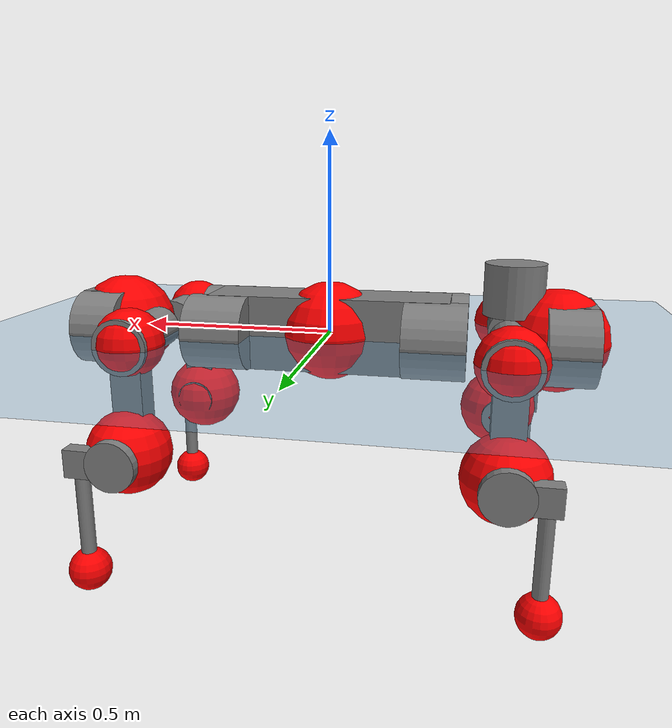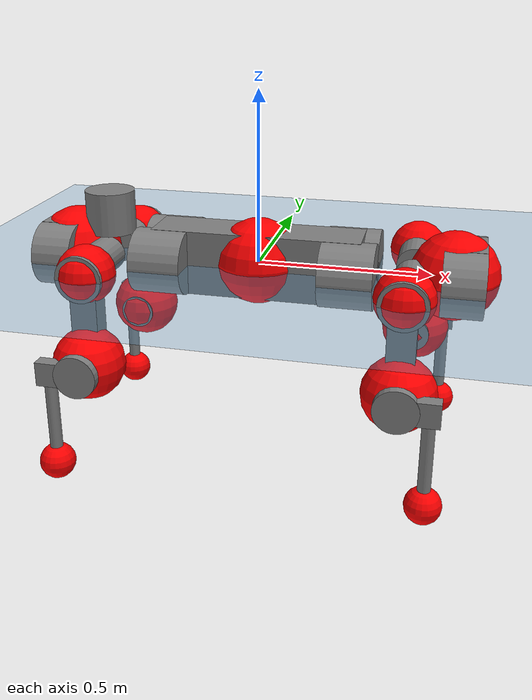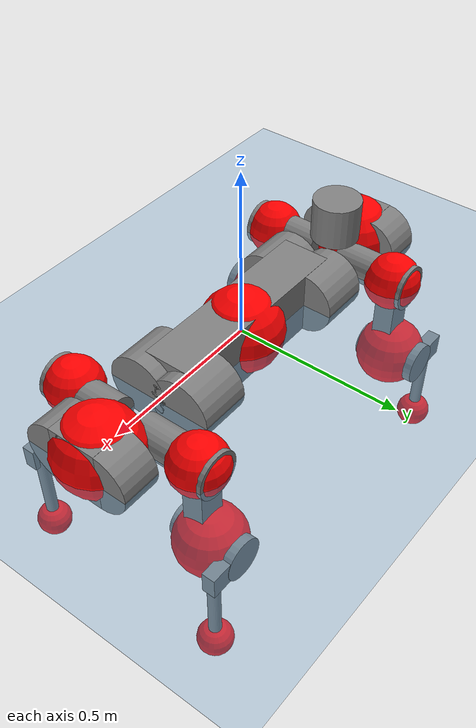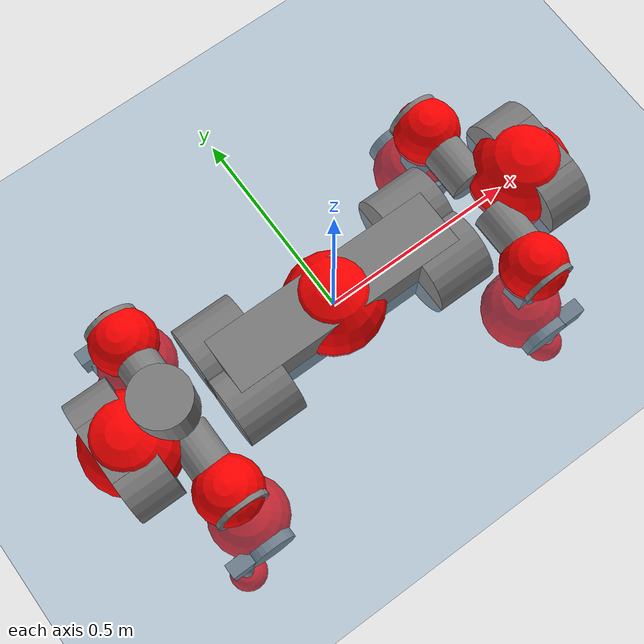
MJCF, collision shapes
<mujoco model="anymal_c">
  <compiler angle="radian" assetdir="assets" balanceinertia="true" inertiafromgeom="false"/>

  <option timestep="0.005" density="1.2" viscosity="2e-05"/>

  <size nkey="1"/>

  <visual>
    <quality shadowsize="8192"/>
    <map shadowclip="0.5"/>
  </visual>

  <default>
    <default class="/">
      <material specular="0" shininess="0.25"/>
      <geom contype="0" conaffinity="0" group="1" solref="-1000 -80"/>
      <site size="0.01 0.005 0.005" group="5"/>
      <general forcelimited="true" forcerange="-80 80" biastype="affine" gainprm="80" biasprm="0 -80 -2"/>
      <default class="anymal_c">
        <joint armature="0.01" damping="0.01" frictionloss="0.1"/>
        <default class="visual">
          <geom type="mesh" group="2"/>
          <default class="visual_zflip"/>
        </default>
        <default class="collision">
          <geom type="cylinder" group="3"/>
          <default class="foot">
            <geom size="0.03 0 0" type="sphere" condim="6" priority="1" friction="0.8 0.02 0.01" solimp="0.015 1 0.03"/>
          </default>
        </default>
      </default>
      <default class="reward_collision_sphere">
        <geom group="5" rgba="1 0 0 1"/>
      </default>
    </default>
  </default>

  <asset>
    <texture type="skybox" colorspace="auto" name="//unnamed_texture_0" builtin="gradient" rgb1="0.95 0.95 0.95" rgb2="0.95 0.95 0.95" width="100" height="600"/>
    <texture type="2d" colorspace="auto" name="texplane" builtin="checker" rgb1="0.345 0.575 0.748" rgb2="0.345 0.575 0.748" markrgb="1 1 1" width="512" height="512"/>
    <texture type="2d" colorspace="linear" name="base" file="base.png"/>
    <texture type="2d" colorspace="linear" name="top_shell" file="top_shell.png"/>
    <texture type="2d" colorspace="linear" name="bottom_shell" file="bottom_shell.png"/>
    <texture type="2d" colorspace="linear" name="remote" file="remote.png"/>
    <texture type="2d" colorspace="linear" name="hatch" file="hatch.png"/>
    <texture type="2d" colorspace="linear" name="handle" file="handle.png"/>
    <texture type="2d" colorspace="linear" name="face" file="face.png"/>
    <texture type="2d" colorspace="linear" name="battery" file="battery.png"/>
    <texture type="2d" colorspace="linear" name="lidar_cage" file="lidar_cage.png"/>
    <texture type="2d" colorspace="linear" name="depth_camera" file="depth_camera.png"/>
    <texture type="2d" colorspace="linear" name="wide_angle_camera" file="wide_angle_camera.png"/>
    <texture type="2d" colorspace="linear" name="lidar" file="lidar.png"/>
    <texture type="2d" colorspace="linear" name="drive" file="drive.png"/>
    <texture type="2d" colorspace="linear" name="hip_l" file="hip_l.png"/>
    <texture type="2d" colorspace="linear" name="shank_l" file="shank_l.png"/>
    <texture type="2d" colorspace="linear" name="foot" file="foot.png"/>
    <texture type="2d" colorspace="linear" name="thigh" file="thigh.png"/>
    <texture type="2d" colorspace="linear" name="shank_r" file="shank_r.png"/>
    <texture type="2d" colorspace="linear" name="hip_r" file="hip_r.png"/>
    <material name="MatPlane" class="/" texture="texplane" texuniform="true" texrepeat="2 2" specular="0.9" shininess="0.5"/>
    <material name="black_plastic" class="/" rgba="0.007 0.007 0.007 1"/>
    <material name="green" class="/" rgba="0.052 0.178 0.033 1"/>
    <material name="red" class="/" rgba="0.178 0.006 0.005 1"/>
    <material name="yellow" class="/" rgba="0.178 0.119 0.006 1"/>
    <material name="lwl" class="/" rgba="0.8 0.8 0.8 1"/>
    <material name="base" class="/" texture="base"/>
    <material name="top_shell" class="/" texture="top_shell"/>
    <material name="bottom_shell" class="/" texture="bottom_shell"/>
    <material name="hip_l" class="/" texture="hip_l"/>
    <material name="thigh" class="/" texture="thigh"/>
    <material name="shank_l" class="/" texture="shank_l"/>
    <material name="foot" class="/" texture="foot"/>
    <material name="hip_r" class="/" texture="hip_r"/>
    <material name="shank" class="/" texture="shank_r"/>
    <material name="hatch" class="/" texture="hatch"/>
    <material name="remote" class="/" texture="remote"/>
    <material name="handle" class="/" texture="handle"/>
    <material name="face" class="/" texture="face"/>
    <material name="depth_camera" class="/" texture="depth_camera"/>
    <material name="wide_angle_camera" class="/" texture="wide_angle_camera"/>
    <material name="battery" class="/" texture="battery"/>
    <material name="lidar_cage" class="/" texture="lidar_cage"/>
    <material name="lidar" class="/" texture="lidar"/>
    <material name="drive" class="/" texture="drive"/>
    <mesh name="base_0" class="/" file="base_0.obj"/>
    <mesh name="base_1" class="/" file="base_1.obj"/>
    <mesh name="base_2" class="/" file="base_2.obj"/>
    <mesh name="base_3" class="/" file="base_3.obj"/>
    <mesh name="base_4" class="/" file="base_4.obj"/>
    <mesh name="base_5" class="/" file="base_5.obj"/>
    <mesh name="top_shell" class="/" file="top_shell.obj"/>
    <mesh name="bottom_shell" class="/" file="bottom_shell.obj"/>
    <mesh name="remote" class="/" file="remote.obj"/>
    <mesh name="handle" class="/" file="handle.obj"/>
    <mesh name="face" class="/" file="face.obj"/>
    <mesh name="wide_angle_camera" class="/" file="wide_angle_camera.obj"/>
    <mesh name="depth_camera" class="/" file="depth_camera.obj"/>
    <mesh name="battery" class="/" file="battery.obj"/>
    <mesh name="lidar_cage" class="/" file="lidar_cage.obj"/>
    <mesh name="lidar" class="/" file="lidar.obj"/>
    <mesh name="drive" class="/" file="drive.obj"/>
    <mesh name="hip_l" class="/" file="hip_l.obj"/>
    <mesh name="thigh" class="/" file="thigh.obj"/>
    <mesh name="shank_l" class="/" file="shank_l.obj"/>
    <mesh name="foot" class="/" file="foot.obj"/>
    <mesh name="hip_r" class="/" file="hip_r.obj"/>
    <mesh name="hatch" class="/" file="hatch.obj"/>
    <mesh name="shank_r" class="/" file="shank_r.obj"/>
  </asset>

  <worldbody>
    <geom name="floor" class="/" size="100 100 0.125" type="plane" group="0" material="MatPlane"/>
    <light name="toplight_shadow" class="/" pos="0 0 5" dir="0.0990148 0.0990148 -0.990148" type="directional" ambient="0.04 0.04 0.04" diffuse="0.55 0.55 0.55" specular="0.12 0.12 0.12"/>
    <light name="toplight_fill" class="/" pos="0 0 5" dir="0.0990148 0.0990148 -0.990148" type="directional" castshadow="false" ambient="0.04 0.04 0.04" diffuse="0.3 0.3 0.3" specular="0.08 0.08 0.08"/>
    <body name="trunk" childclass="anymal_c" pos="-0.000511329 0.000154841 0.00526729" quat="1 -0.000805857 0.000244243 0.000333551">
      <inertial pos="0.00483921 -0.00901209 0.039776" quat="0.499442 0.498459 0.500537 0.501556" mass="23.1311" diaginertia="1.82212 0.607964 0.142239"/>
      <joint name="//unnamed_joint_0" type="free" armature="0" damping="0" frictionloss="0"/>
      <geom name="//unnamed_geom_1" class="visual" material="green" mesh="base_0"/>
      <geom name="//unnamed_geom_2" class="visual" material="yellow" mesh="base_1"/>
      <geom name="//unnamed_geom_3" class="visual" material="red" mesh="base_2"/>
      <geom name="//unnamed_geom_4" class="visual" material="black_plastic" mesh="base_3"/>
      <geom name="//unnamed_geom_5" class="visual" material="lwl" mesh="base_4"/>
      <geom name="//unnamed_geom_6" class="visual" material="base" mesh="base_5"/>
      <geom name="trunk_1" class="collision" size="0.304632 0.0735318 0.0945409" type="box"/>
      <geom name="trunk_2" class="collision" size="0.0945409 0.076158" pos="0.271853 0.0688894 0" quat="0.707107 0 0.707107 0"/>
      <geom name="trunk_3" class="collision" size="0.0945409 0.076158" pos="-0.271853 0.0688894 0" quat="0.707107 0 0.707107 0"/>
      <geom name="trunk_4" class="collision" size="0.0945409 0.076158" pos="0.271853 -0.0688894 0" quat="0.707107 0 0.707107 0"/>
      <geom name="trunk_5" class="collision" size="0.0945409 0.076158" pos="-0.271853 -0.0688894 0" quat="0.707107 0 0.707107 0"/>
      <geom name="//unnamed_geom_12" class="visual" material="top_shell" mesh="top_shell"/>
      <geom name="//unnamed_geom_13" class="visual" material="bottom_shell" mesh="bottom_shell"/>
      <geom name="//unnamed_geom_14" class="visual" material="remote" mesh="remote"/>
      <geom name="//unnamed_geom_15" class="visual" material="handle" mesh="handle"/>
      <geom name="//unnamed_geom_16" class="visual" pos="0.518083 0 0" quat="1 0 0 0" material="face" mesh="face"/>
      <geom name="trunk_6" class="collision" size="0.057775 0.0735318 0.0945409" pos="0.586827 0 0" type="box"/>
      <geom name="//unnamed_geom_18" class="collision" size="0.0945409 0.057775" pos="0.586827 0.0688894 0" quat="0.707107 0 0.707107 0"/>
      <geom name="//unnamed_geom_19" class="collision" size="0.0945409 0.057775" pos="0.586827 -0.0688894 0" quat="0.707107 0 0.707107 0"/>
      <geom name="//unnamed_geom_20" class="visual" pos="0.577001 0 -0.0242586" quat="0.965926 0 0.258819 0" material="depth_camera" mesh="depth_camera"/>
      <geom name="//unnamed_geom_21" class="visual" pos="0.641198 0 0.0137325" material="wide_angle_camera" mesh="wide_angle_camera"/>
      <geom name="//unnamed_geom_22" class="visual_zflip" pos="-0.518083 0 0" quat="0 0 0 1" material="face" mesh="face"/>
      <geom name="trunk_7" class="collision" size="0.057775 0.0735318 0.0945409" pos="-0.586827 0 0" quat="0 0 0 1" type="box"/>
      <geom name="//unnamed_geom_24" class="collision" size="0.0945409 0.057775" pos="-0.586827 -0.0688894 0" quat="0 -0.707107 0 0.707107"/>
      <geom name="//unnamed_geom_25" class="collision" size="0.0945409 0.057775" pos="-0.586827 0.0688894 0" quat="0 -0.707107 0 0.707107"/>
      <geom name="//unnamed_geom_26" class="visual" pos="-0.577001 0 -0.0242586" quat="0 -0.258819 0 0.965926" material="depth_camera" mesh="depth_camera"/>
      <geom name="//unnamed_geom_27" class="visual_zflip" pos="-0.641198 0 0.0137325" quat="0 0 0 1" material="wide_angle_camera" mesh="wide_angle_camera"/>
      <geom name="//unnamed_geom_28" class="visual" material="battery" mesh="battery"/>
      <geom name="//unnamed_geom_29" class="visual" pos="0 0.0717458 0.029176" quat="0.683013 -0.183013 0.183013 0.683013" material="depth_camera" mesh="depth_camera"/>
      <geom name="//unnamed_geom_30" class="visual" pos="0 -0.0717458 0.029176" quat="0.683013 0.183013 0.183013 -0.683013" material="depth_camera" mesh="depth_camera"/>
      <geom name="//unnamed_geom_31" class="visual" pos="-0.454963 0 0.0674239" quat="1 0 0 0" material="lidar_cage" mesh="lidar_cage"/>
      <geom name="trunk_8" class="collision" size="0.0735318 0.0630273" pos="-0.454963 0 0.122464"/>
      <geom name="//unnamed_geom_33" class="visual" pos="-0.454963 -0.000104411 0.130445" quat="0.707107 0 0 -0.707107" material="lidar" mesh="lidar"/>
      <geom name="//unnamed_geom_34" class="visual" pos="0.374844 0.102326 1.15236e-09" quat="0.258819 0.965926 0 0" material="drive" mesh="drive"/>
      <geom name="//unnamed_geom_35" class="visual" pos="0.374844 -0.102326 -1.15236e-09" quat="0.258819 -0.965926 0 0" material="drive" mesh="drive"/>
      <geom name="//unnamed_geom_36" class="visual" pos="-0.374844 0.102326 -1.15236e-09" quat="0 0 0.965926 -0.258819" material="drive" mesh="drive"/>
      <geom name="//unnamed_geom_37" class="visual" pos="-0.374844 -0.102326 1.15236e-09" quat="0 0 -0.965926 -0.258819" material="drive" mesh="drive"/>
      <geom name="//unnamed_geom_38" class="visual" pos="0.144988 0 0.0669652" quat="1 0 0 0" material="hatch" mesh="hatch"/>
      <geom name="//unnamed_geom_39" class="reward_collision_sphere" size="0.126055"/>
      <geom name="//unnamed_geom_40" class="reward_collision_sphere" size="0.126055" pos="0.562454 0 0"/>
      <geom name="//unnamed_geom_41" class="reward_collision_sphere" size="0.126055" pos="-0.562454 0 0"/>
      <site name="imu" pos="0.306025 0.02486 0.035836" size="0.0105045"/>
      <camera name="track" pos="0 -1.96827 0" quat="0.707107 0.707107 0 0" mode="trackcom"/>
      <camera name="ego_camera" pos="0.562454 0 -0.0366933" quat="-0.5 -0.5 0.5 0.5"/>
      <body name="LF_HIP" pos="0.373659 0.10654 0.00149405" quat="0.258814 0.965927 -3.72596e-06 -7.81696e-06">
        <inertial pos="0.0782455 -0.0164679 -0.0045551" quat="-0.12661 0.707703 -0.130091 0.68279" mass="3.23701" diaginertia="0.0178864 0.00473815 0.00205093"/>
        <joint name="LF_HAA" pos="0 0 0" axis="0.999992 0.00215986 0.00345804" range="-0.679616 0.485627" armature="0.0082106" damping="0" frictionloss="0.141489"/>
        <geom name="//unnamed_geom_42" class="visual" pos="0 6.77879e-05 -1.11341e-05" quat="0.258819 -0.965926 0 0" material="hip_l" mesh="hip_l"/>
        <geom name="//unnamed_geom_43" class="visual" pos="0.0748689 -0.0871967 -0.0498489" quat="0.183013 -0.683013 0.683013 0.183013" material="drive" mesh="drive"/>
        <geom name="//unnamed_geom_44" class="collision" size="0.0525227 0.0735318" pos="0.0748689 -0.0117701 -0.00633418" quat="-0.353553 -0.612372 0.612372 -0.353553"/>
        <body name="LF_THIGH" pos="0.0757061 -0.0731955 -0.040495" quat="0.18291 -0.683064 0.682966 0.183096">
          <inertial pos="0.0370507 -0.000781651 -0.222179" quat="0.992037 -0.00428936 -0.0878035 0.0901917" mass="3.91635" diaginertia="0.0902798 0.0279509 0.00334719"/>
          <joint name="LF_HFE" pos="0 0 0" axis="0.999938 -0.00982813 0.00530893" stiffness="0.00248615" range="-3.04962 3.10004" armature="0.0102711" damping="0.00875695" frictionloss="0.114277"/>
          <geom name="//unnamed_geom_45" class="visual" pos="0.00528764 8.33208e-06 0" quat="0.707107 0 0 -0.707107" material="thigh" mesh="thigh"/>
          <geom name="//unnamed_geom_46" class="collision" size="0.0682796 0.0420182" pos="0.0499959 0 0" quat="0.5 0.5 -0.5 -0.5"/>
          <geom name="//unnamed_geom_47" class="collision" size="0.0393921 0.0315136 0.148444" pos="0.0374969 0 -0.129632" quat="0.707107 0 0 -0.707107" type="box"/>
          <geom name="//unnamed_geom_48" class="visual" pos="0.125365 0 -0.26144" quat="1 0 0 0" material="drive" mesh="drive"/>
          <geom name="//unnamed_geom_49" class="collision" size="0.0525227 0.0735318" pos="0.0378719 0 -0.26144" quat="0.707107 0 0.707107 0"/>
          <geom name="//unnamed_geom_50" class="reward_collision_sphere" size="0.0840364" pos="0.0312474 0 0"/>
          <body name="LF_SHANK" pos="0.127379 -0.00509481 -0.267396" quat="0.999991 -0.00258138 -0.00128478 -0.00311423">
            <inertial pos="0.00495697 -0.0605466 -0.0742697" quat="0.992968 -0.115785 0.00140481 -0.0246452" mass="0.741687" diaginertia="0.030737 0.00886116 0.000797319"/>
            <joint name="LF_KFE" pos="0 0 0" axis="1 -0.000158264 -0.000562092" stiffness="0.00324619" range="-3.10929 3.1201" armature="0.0117497" damping="0" frictionloss="0.132863"/>
            <geom name="//unnamed_geom_51" class="visual" pos="0.00172418 0.00919343 0" quat="0.707107 0 0 -0.707107" material="shank_l" mesh="shank_l"/>
            <geom name="LF_kfe_act" class="collision" size="0.0630273 0.0210091" pos="0.024998 0 0" quat="0.5 0.5 -0.5 -0.5"/>
            <geom name="//unnamed_geom_53" class="collision" size="0.0604001 0.0354529 0.0199586" pos="0.024998 -0.0565868 0" quat="0.5 0.5 -0.5 -0.5" type="box"/>
            <geom name="//unnamed_geom_54" class="visual" pos="0.0163107 -0.083592 -0.310031" quat="0.382683 0 0 -0.92388" material="foot" mesh="foot"/>
            <geom name="LF_calf" class="collision" size="0.018383 0.148379" pos="0.0163112 -0.0865547 -0.155015" quat="0.707107 0 0 -0.707107"/>
            <geom name="LF_foot" class="foot" size="0.0238377" pos="0.0163112 -0.0865547 -0.289391" quat="0.707107 0 0 -0.707107"/>
            <geom name="//unnamed_geom_57" class="reward_collision_sphere" size="0.105045" pos="-0.0624949 0 0"/>
            <geom name="//unnamed_geom_58" class="reward_collision_sphere" size="0.0525227" pos="0.0163112 -0.0865547 -0.289391"/>
            <site name="LF_foot" class="foot" pos="0.0163112 -0.0865547 -0.289391" quat="0.707107 0 0 -0.707107" size="0.0105045"/>
          </body>
        </body>
      </body>
      <body name="RF_HIP" pos="0.374047 -0.0985275 -0.000876067" quat="0.261529 -0.965194 -0.0013878 -0.00118241">
        <inertial pos="0.0701589 0.0165915 -0.00878026" quat="0.135929 0.680229 0.123637 0.709596" mass="3.52251" diaginertia="0.0191881 0.00516387 0.00211279"/>
        <joint name="RF_HAA" pos="0 0 0" axis="0.999987 0.000482139 0.00509148" range="-0.612803 0.88785" armature="0.00963979" damping="0.00815111" frictionloss="0.127995"/>
        <geom name="//unnamed_geom_59" class="visual" pos="0 -6.77874e-05 -1.11341e-05" quat="0.258819 0.965926 0 0" material="hip_r" mesh="hip_r"/>
        <geom name="//unnamed_geom_60" class="visual" pos="0.0748689 0.0871967 -0.0498489" quat="0.183013 0.683013 0.683013 -0.183013" material="drive" mesh="drive"/>
        <geom name="//unnamed_geom_61" class="collision" size="0.0525227 0.0735318" pos="0.0748689 0.0117701 -0.00633418" quat="-0.353553 0.612372 0.612372 0.353553"/>
        <body name="RF_THIGH" pos="0.0650718 0.0679033 -0.0376241" quat="0.183016 0.682955 0.683081 -0.182971">
          <inertial pos="0.0404342 -0.00145013 -0.224929" quat="0.993143 -0.00683752 -0.0783513 0.086496" mass="3.21534" diaginertia="0.089131 0.0247055 0.00239833"/>
          <joint name="RF_HFE" pos="0 0 0" axis="0.999044 -0.0132193 -0.0416733" stiffness="0.00494554" range="-3.34645 3.30863" armature="0.0113718" damping="0.0372815" frictionloss="0.103032"/>
          <geom name="//unnamed_geom_62" class="visual" pos="0.00528764 8.33208e-06 0" quat="0.707107 0 0 -0.707107" material="thigh" mesh="thigh"/>
          <geom name="//unnamed_geom_63" class="collision" size="0.0682796 0.0420182" pos="0.0499959 0 0" quat="0.5 0.5 0.5 0.5"/>
          <geom name="//unnamed_geom_64" class="collision" size="0.0393921 0.0315136 0.148444" pos="0.0374969 0 -0.129632" quat="0.707107 0 0 0.707107" type="box"/>
          <geom name="//unnamed_geom_65" class="visual" pos="0.125365 0 -0.26144" quat="1 0 0 0" material="drive" mesh="drive"/>
          <geom name="//unnamed_geom_66" class="collision" size="0.0525227 0.0735318" pos="0.0378719 0 -0.26144" quat="0.707107 0 0.707107 0"/>
          <geom name="//unnamed_geom_67" class="reward_collision_sphere" size="0.0840364" pos="0.0312474 0 0"/>
          <body name="RF_SHANK" pos="0.116556 0.000794325 -0.264442" quat="1 0.000323254 -0.000113943 0.000261021">
            <inertial pos="0.00832453 0.0598857 -0.0836091" quat="0.992924 0.115671 -0.00192297 0.0267998" mass="0.779314" diaginertia="0.0297667 0.00840798 0.000716997"/>
            <joint name="RF_KFE" pos="0 0 0" axis="0.998632 -0.0254927 0.0456513" stiffness="0.00477823" range="-3.14343 3.27801" armature="0.0106119" damping="0.0151891" frictionloss="0.159356"/>
            <geom name="//unnamed_geom_68" class="visual" pos="0.00172417 -0.00919341 0" quat="0.707107 0 0 0.707107" material="shank" mesh="shank_r"/>
            <geom name="RF_kfe_act" class="collision" size="0.0630273 0.0210091" pos="0.024998 0 0" quat="0.5 0.5 0.5 0.5"/>
            <geom name="//unnamed_geom_70" class="collision" size="0.0604001 0.0354529 0.0199586" pos="0.024998 0.0565868 0" quat="0.5 0.5 0.5 0.5" type="box"/>
            <geom name="//unnamed_geom_71" class="visual" pos="0.0163116 0.083592 -0.310031" quat="0.382683 0 0 0.92388" material="foot" mesh="foot"/>
            <geom name="RF_calf" class="collision" size="0.018383 0.148379" pos="0.0163112 0.0865547 -0.155015" quat="0.707107 0 0 0.707107"/>
            <geom name="RF_foot" class="foot" size="0.0313664" pos="0.0163112 0.0865547 -0.289391" quat="0.707107 0 0 0.707107"/>
            <geom name="//unnamed_geom_74" class="reward_collision_sphere" size="0.105045" pos="-0.0624949 0 0"/>
            <geom name="//unnamed_geom_75" class="reward_collision_sphere" size="0.0525227" pos="0.0163112 0.0865547 -0.289391"/>
            <site name="RF_foot" class="foot" pos="0.0163112 0.0865547 -0.289391" quat="0.707107 0 0 0.707107" size="0.0105045"/>
          </body>
        </body>
      </body>
      <body name="LH_HIP" pos="-0.375161 0.0968763 0.00143154" quat="0.000705602 -0.000122769 0.965926 -0.258816">
        <inertial pos="0.0736696 0.0221618 -0.00655054" quat="0.133255 0.713427 0.147088 0.672034" mass="3.66437" diaginertia="0.0177293 0.00429814 0.00220202"/>
        <joint name="LH_HAA" pos="0 0 0" axis="0.99964 0.00235241 -0.0267365" stiffness="0.0292844" range="-0.482954 0.773902" armature="0.0104156" damping="0.0294425" frictionloss="0.0895578"/>
        <geom name="//unnamed_geom_76" class="visual" pos="0 -6.77874e-05 -1.11341e-05" quat="-0.258819 -0.965926 0 0" material="hip_r" mesh="hip_r"/>
        <geom name="//unnamed_geom_77" class="visual" pos="0.0748689 0.0871967 -0.0498489" quat="0.183013 0.683013 0.683013 -0.183013" material="drive" mesh="drive"/>
        <geom name="//unnamed_geom_78" class="collision" size="0.0525227 0.0735318" pos="0.0748689 0.0117701 -0.00633418" quat="-0.353553 0.612372 0.612372 0.353553"/>
        <body name="LH_THIGH" pos="0.0735145 0.0787609 -0.0366713" quat="0.181957 0.683894 0.682348 -0.183251">
          <inertial pos="0.0394554 0.00515885 -0.224784" quat="0.992702 -0.00957718 -0.085225 0.0847823" mass="3.43773" diaginertia="0.0813246 0.0256722 0.00234516"/>
          <joint name="LH_HFE" pos="0 0 0" axis="0.999999 -0.00134601 -0.000251717" range="-3.13237 3.15308" armature="0.0110266" damping="0.00925557" frictionloss="0.102405"/>
          <geom name="//unnamed_geom_79" class="visual" pos="0.00528764 8.33208e-06 0" quat="0.707107 0 0 -0.707107" material="thigh" mesh="thigh"/>
          <geom name="//unnamed_geom_80" class="collision" size="0.0682796 0.0420182" pos="0.0499959 0 0" quat="0.5 0.5 -0.5 -0.5"/>
          <geom name="//unnamed_geom_81" class="collision" size="0.0393921 0.0315136 0.148444" pos="0.0374969 0 -0.129632" quat="0.707107 0 0 -0.707107" type="box"/>
          <geom name="//unnamed_geom_82" class="visual" pos="0.125365 0 -0.26144" quat="1 0 0 0" material="drive" mesh="drive"/>
          <geom name="//unnamed_geom_83" class="collision" size="0.0525227 0.0735318" pos="0.0378719 0 -0.26144" quat="0.707107 0 0.707107 0"/>
          <geom name="//unnamed_geom_84" class="reward_collision_sphere" size="0.0840364" pos="0.0312474 0 0"/>
          <body name="LH_SHANK" pos="0.119532 0.000957899 -0.260932" quat="0.999994 -0.00229585 0.00119317 0.00220008">
            <inertial pos="0.000716622 0.061139 -0.0691245" quat="0.992828 0.11667 0.000138362 0.0261066" mass="0.645661" diaginertia="0.0269562 0.00660246 0.000542097"/>
            <joint name="LH_KFE" pos="0 0 0" axis="0.999789 -0.0178198 -0.0102514" range="-3.14033 3.35976" armature="0.0106567" damping="0" frictionloss="0.0913415"/>
            <geom name="//unnamed_geom_85" class="visual" pos="0.00172417 -0.00919341 0" quat="-0.707107 0 0 -0.707107" material="shank" mesh="shank_r"/>
            <geom name="LH_kfe_act" class="collision" size="0.0630273 0.0210091" pos="0.024998 0 0" quat="0.5 0.5 -0.5 -0.5"/>
            <geom name="//unnamed_geom_87" class="collision" size="0.0604001 0.0354529 0.0199586" pos="0.024998 0.0565868 0" quat="0.5 0.5 -0.5 -0.5" type="box"/>
            <geom name="//unnamed_geom_88" class="visual" pos="0.0163116 0.083592 -0.310031" quat="-0.382683 0 0 -0.92388" material="foot" mesh="foot"/>
            <geom name="LH_calf" class="collision" size="0.018383 0.148379" pos="0.0163112 0.0865547 -0.155015" quat="0.707107 0 0 -0.707107"/>
            <geom name="LH_foot" class="foot" size="0.0421963" pos="0.0163112 0.0865547 -0.289391" quat="0.707107 0 0 -0.707107"/>
            <geom name="//unnamed_geom_91" class="reward_collision_sphere" size="0.105045" pos="-0.0624949 0 0"/>
            <geom name="//unnamed_geom_92" class="reward_collision_sphere" size="0.0525227" pos="0.0163112 0.0865547 -0.289391"/>
            <site name="LH_foot" class="foot" pos="0.0163112 0.0865547 -0.289391" quat="0.707107 0 0 -0.707107" size="0.0105045"/>
          </body>
        </body>
      </body>
      <body name="RH_HIP" pos="-0.375844 -0.10867 0.00448859" quat="0.000453713 0.000379885 -0.966877 -0.255242">
        <inertial pos="0.071359 -0.017749 -0.00549001" quat="-0.143007 0.707895 -0.182783 0.667102" mass="3.4107" diaginertia="0.0179008 0.00496216 0.00227257"/>
        <joint name="RH_HAA" pos="0 0 0" axis="0.99999 0.00443067 0.000972468" stiffness="0.000789078" range="-0.575293 0.496563" armature="0.0148644" damping="0.0218972" frictionloss="0.0829391"/>
        <geom name="//unnamed_geom_93" class="visual" pos="0 6.77879e-05 -1.11341e-05" quat="-0.258819 0.965926 0 0" material="hip_l" mesh="hip_l"/>
        <geom name="//unnamed_geom_94" class="visual" pos="0.0748689 -0.0871967 -0.0498489" quat="-0.183013 0.683013 -0.683013 -0.183013" material="drive" mesh="drive"/>
        <geom name="//unnamed_geom_95" class="collision" size="0.0525227 0.0735318" pos="0.0748689 -0.0117701 -0.00633418" quat="0.353553 0.612372 -0.612372 0.353553"/>
        <body name="RH_THIGH" pos="0.0733507 -0.0693032 -0.0293967" quat="-0.18253 0.683031 -0.683126 -0.183005">
          <inertial pos="0.0384298 -0.0105396 -0.22893" quat="0.990939 0.0183188 -0.101184 0.0864091" mass="4.01444" diaginertia="0.10194 0.0305697 0.00300761"/>
          <joint name="RH_HFE" pos="0 0 0" axis="0.999758 0.0159501 0.0151747" range="-3.17677 3.31133" armature="0.0045638" damping="0.006069" frictionloss="0.101973"/>
          <geom name="//unnamed_geom_96" class="visual" pos="0.00528764 8.33208e-06 0" quat="0.707107 0 0 -0.707107" material="thigh" mesh="thigh"/>
          <geom name="//unnamed_geom_97" class="collision" size="0.0682796 0.0420182" pos="0.0499959 0 0" quat="0.5 0.5 0.5 0.5"/>
          <geom name="//unnamed_geom_98" class="collision" size="0.0393921 0.0315136 0.148444" pos="0.0374969 0 -0.129632" quat="0.707107 0 0 0.707107" type="box"/>
          <geom name="//unnamed_geom_99" class="visual" pos="0.125365 0 -0.26144" quat="1 0 0 0" material="drive" mesh="drive"/>
          <geom name="//unnamed_geom_100" class="collision" size="0.0525227 0.0735318" pos="0.0378719 0 -0.26144" quat="0.707107 0 0.707107 0"/>
          <geom name="//unnamed_geom_101" class="reward_collision_sphere" size="0.0840364" pos="0.0312474 0 0"/>
          <body name="RH_SHANK" pos="0.1277 0.00623185 -0.259756" quat="0.999996 0.00250918 -0.0012114 -6.46342e-05">
            <inertial pos="0.00409779 -0.0614227 -0.0742951" quat="0.996441 -0.07279 -0.00482475 -0.0422379" mass="0.777988" diaginertia="0.032444 0.00888326 0.000652893"/>
            <joint name="RH_KFE" pos="0 0 0" axis="0.999165 0.0401377 -0.0076613" range="-3.26764 2.98303" armature="0.00959639" damping="0.00636847" frictionloss="0.111877"/>
            <geom name="//unnamed_geom_102" class="visual" pos="0.00172418 0.00919343 0" quat="0.707107 0 0 -0.707107" material="shank_l" mesh="shank_l"/>
            <geom name="RH_kfe_act" class="collision" size="0.0630273 0.0210091" pos="0.024998 0 0" quat="0.5 0.5 0.5 0.5"/>
            <geom name="//unnamed_geom_104" class="collision" size="0.0604001 0.0354529 0.0199586" pos="0.024998 -0.0565868 0" quat="0.5 0.5 0.5 0.5" type="box"/>
            <geom name="//unnamed_geom_105" class="visual" pos="0.0163107 -0.083592 -0.310031" quat="0.382683 0 0 -0.92388" material="foot" mesh="foot"/>
            <geom name="RH_calf" class="collision" size="0.018383 0.148379" pos="0.0163112 -0.0865547 -0.155015" quat="0.707107 0 0 0.707107"/>
            <geom name="RH_foot" class="foot" size="0.043727" pos="0.0163112 -0.0865547 -0.289391" quat="0.707107 0 0 0.707107"/>
            <geom name="//unnamed_geom_108" class="reward_collision_sphere" size="0.105045" pos="-0.0624949 0 0"/>
            <geom name="//unnamed_geom_109" class="reward_collision_sphere" size="0.0525227" pos="0.0163112 -0.0865547 -0.289391"/>
            <site name="RH_foot" class="foot" pos="0.0163112 -0.0865547 -0.289391" quat="0.707107 0 0 0.707107" size="0.0105045"/>
          </body>
        </body>
      </body>
    </body>
  </worldbody>

  <contact>
    <pair class="/" geom1="floor" geom2="LF_foot" name="//unnamed_contact_0"/>
    <pair class="/" geom1="floor" geom2="RF_foot" name="//unnamed_contact_1"/>
    <pair class="/" geom1="floor" geom2="LH_foot" name="//unnamed_contact_2"/>
    <pair class="/" geom1="floor" geom2="RH_foot" name="//unnamed_contact_3"/>
  </contact>

  <actuator>
    <general name="LF_HAA" class="/" joint="LF_HAA" forcerange="-94.9349 94.9349" gainprm="65.8046" biasprm="0 -65.8046 -1.9953"/>
    <general name="LF_HFE" class="/" joint="LF_HFE" forcerange="-116.272 116.272" gainprm="65.8046" biasprm="0 -65.8046 -1.9953"/>
    <general name="LF_KFE" class="/" joint="LF_KFE" forcerange="-84.2369 84.2369" gainprm="65.8046" biasprm="0 -65.8046 -1.9953"/>
    <general name="RF_HAA" class="/" joint="RF_HAA" forcerange="-85.6329 85.6329" gainprm="65.8046" biasprm="0 -65.8046 -1.9953"/>
    <general name="RF_HFE" class="/" joint="RF_HFE" forcerange="-80.8858 80.8858" gainprm="65.8046" biasprm="0 -65.8046 -1.9953"/>
    <general name="RF_KFE" class="/" joint="RF_KFE" forcerange="-91.4896 91.4896" gainprm="65.8046" biasprm="0 -65.8046 -1.9953"/>
    <general name="LH_HAA" class="/" joint="LH_HAA" forcerange="-69.4889 69.4889" gainprm="65.8046" biasprm="0 -65.8046 -1.9953"/>
    <general name="LH_HFE" class="/" joint="LH_HFE" forcerange="-86.0525 86.0525" gainprm="65.8046" biasprm="0 -65.8046 -1.9953"/>
    <general name="LH_KFE" class="/" joint="LH_KFE" forcerange="-93.6885 93.6885" gainprm="65.8046" biasprm="0 -65.8046 -1.9953"/>
    <general name="RH_HAA" class="/" joint="RH_HAA" forcerange="-115.505 115.505" gainprm="65.8046" biasprm="0 -65.8046 -1.9953"/>
    <general name="RH_HFE" class="/" joint="RH_HFE" forcerange="-81.2692 81.2692" gainprm="65.8046" biasprm="0 -65.8046 -1.9953"/>
    <general name="RH_KFE" class="/" joint="RH_KFE" forcerange="-82.4813 82.4813" gainprm="65.8046" biasprm="0 -65.8046 -1.9953"/>
  </actuator>

  <sensor>
    <gyro site="imu" name="imu_angular_velocity"/>
    <velocimeter site="imu" name="imu_linear_velocity"/>
    <framelinvel objtype="site" objname="LF_foot" name="LF_foot_global_linear_velocity"/>
    <framelinvel objtype="site" objname="RF_foot" name="RF_foot_global_linear_velocity"/>
    <framelinvel objtype="site" objname="LH_foot" name="LH_foot_global_linear_velocity"/>
    <framelinvel objtype="site" objname="RH_foot" name="RH_foot_global_linear_velocity"/>
  </sensor>

  <keyframe>
    <key name="home" qpos="0 0 0.55 1 0 0 0 0 0.4 -0.8 0 -0.4 0.8 0 -0.4 0.8 0 0.4 -0.8"/>
  </keyframe>
</mujoco>
